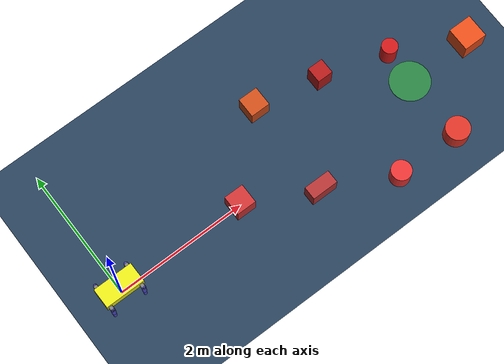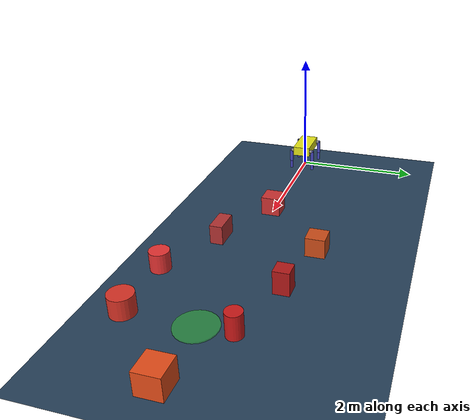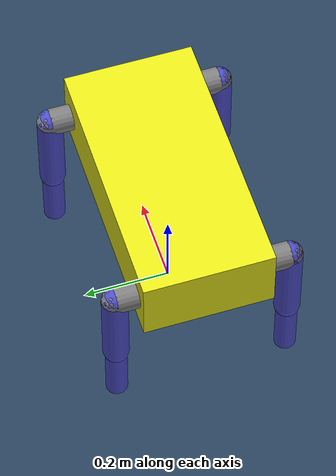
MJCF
<mujoco model="spot_quadruped">
  <compiler angle="radian" meshdir="meshes" autolimits="true"/>

  <option timestep="0.002" iterations="50" solver="Newton" tolerance="1e-10"/>

  <asset>
    <!-- Ground plane texture -->
    <texture name="grid" type="2d" builtin="checker" rgb1=".1 .2 .3"
             rgb2=".2 .3 .4" width="300" height="300" mark="edge" markrgb=".2 .3 .4"/>
    <material name="grid" texture="grid" texrepeat="1 1" texuniform="true" reflectance=".2"/>

    <!-- Goal marker texture -->
    <texture name="goal_tex" type="2d" builtin="flat" rgb1="0.2 0.8 0.2"
             rgb2="0.2 0.8 0.2" width="100" height="100"/>
    <material name="goal_mat" texture="goal_tex"/>

    <!-- Obstacle texture -->
    <texture name="obstacle_tex" type="2d" builtin="flat" rgb1="0.8 0.2 0.2"
             rgb2="0.8 0.2 0.2" width="100" height="100"/>
    <material name="obstacle_mat" texture="obstacle_tex" rgba="0.8 0.2 0.2 1"/>
  </asset>

  <default>
    <geom contype="1" conaffinity="1" friction="1.0 0.005 0.0001"
          solimp="0.9 0.95 0.001" solref="0.002 1"/>
    <joint damping="0.5" armature="0.01"/>
    <motor ctrllimited="true" ctrlrange="-1 1"/>
  </default>

  <worldbody>
    <!-- Ground plane -->
    <light diffuse=".5 .5 .5" pos="0 0 3" dir="0 0 -1"/>
    <geom name="floor" pos="0 0 0" size="40 40 .25" type="plane" material="grid" condim="3"/>

    <!-- Goal marker (visual only) -->
    <body name="goal_marker" pos="5 0 0.01">
      <geom name="goal" type="cylinder" size="0.3 0.01" rgba="0.2 0.8 0.2 0.5"
            contype="0" conaffinity="0" material="goal_mat"/>
    </body>

    <!-- Obstacles (positions randomized by environment at reset) -->
    <body name="obstacle_0" pos="2 0 0.15">
      <geom name="obs_geom_0" type="box" size="0.15 0.15 0.15" material="obstacle_mat"
            rgba="0.8 0.2 0.2 1" mass="50" contype="1" conaffinity="1"/>
    </body>
    <body name="obstacle_1" pos="3 1 0.15">
      <geom name="obs_geom_1" type="box" size="0.15 0.15 0.15" material="obstacle_mat"
            rgba="0.8 0.3 0.1 1" mass="50" contype="1" conaffinity="1"/>
    </body>
    <body name="obstacle_2" pos="4 -1 0.15">
      <geom name="obs_geom_2" type="cylinder" size="0.15 0.15" material="obstacle_mat"
            rgba="0.9 0.2 0.2 1" mass="50" contype="1" conaffinity="1"/>
    </body>
    <body name="obstacle_3" pos="3 -0.5 0.15">
      <geom name="obs_geom_3" type="box" size="0.2 0.1 0.15" material="obstacle_mat"
            rgba="0.7 0.2 0.2 1" mass="50" contype="1" conaffinity="1"/>
    </body>
    <body name="obstacle_4" pos="5 0.5 0.15">
      <geom name="obs_geom_4" type="cylinder" size="0.12 0.2" material="obstacle_mat"
            rgba="0.8 0.1 0.1 1" mass="50" contype="1" conaffinity="1"/>
    </body>
    <body name="obstacle_5" pos="6 0 0.15">
      <geom name="obs_geom_5" type="box" size="0.18 0.18 0.18" material="obstacle_mat"
            rgba="0.9 0.3 0.1 1" mass="50" contype="1" conaffinity="1"/>
    </body>
    <body name="obstacle_6" pos="4 0.8 0.15">
      <geom name="obs_geom_6" type="box" size="0.12 0.12 0.2" material="obstacle_mat"
            rgba="0.7 0.1 0.1 1" mass="50" contype="1" conaffinity="1"/>
    </body>
    <body name="obstacle_7" pos="5 -1 0.15">
      <geom name="obs_geom_7" type="cylinder" size="0.18 0.15" material="obstacle_mat"
            rgba="0.85 0.2 0.15 1" mass="50" contype="1" conaffinity="1"/>
    </body>

    <!-- Overview camera (fixed position, tracking handled programmatically in test script) -->
    <camera name="overview_camera" pos="0 -4 6" xyaxes="1 0 0 0 0.5547 0.8321" fovy="60"/>

    <!-- Spot Robot Body -->
    <body name="base_link" pos="0 0 0.35">
      <freejoint name="base_joint"/>

      <!-- Main body -->
      <geom name="body" type="box" size="0.3 0.15 0.08" rgba="0.9 0.9 0.1 1" mass="10"/>

      <!-- Inertial (add realistic inertia) -->
      <inertial pos="0 0 0" mass="10"
                diaginertia="0.1 0.15 0.2"/>

      <!-- Front-facing camera for CNN obstacle detection -->
      <camera name="front_camera" pos="0.32 0 0.0" xyaxes="0 -1 0 0 0 1"
              fovy="60" mode="fixed"/>

      <!-- Front Left Leg -->
      <body name="fl_hip" pos="0.25 0.15 0">
        <joint name="fl_hip_joint" type="hinge" axis="1 0 0" range="-0.8 0.8" damping="0.5"/>
        <geom name="fl_hip_geom" type="capsule" size="0.03" fromto="0 0 0 0 0.05 0"
              rgba="0.5 0.5 0.5 1" mass="0.5"/>

        <body name="fl_thigh" pos="0 0.05 0">
          <joint name="fl_thigh_joint" type="hinge" axis="0 1 0" range="-2.8 0.8" damping="0.5"/>
          <geom name="fl_thigh_geom" type="capsule" size="0.03" fromto="0 0 0 0 0 -0.20"
                rgba="0.3 0.3 0.8 1" mass="1.0"/>

          <body name="fl_calf" pos="0 0 -0.20">
            <joint name="fl_calf_joint" type="hinge" axis="0 1 0" range="-0.5 2.8" damping="0.5"/>
            <geom name="fl_calf_geom" type="capsule" size="0.025" fromto="0 0 0 0 0 -0.20"
                  rgba="0.3 0.3 0.8 1" mass="0.8"/>

            <!-- Foot contact -->
            <geom name="fl_foot" type="sphere" size="0.03" pos="0 0 -0.20"
                  rgba="0.1 0.1 0.1 1" mass="0.2" friction="1.5 0.005 0.0001"/>
          </body>
        </body>
      </body>

      <!-- Front Right Leg -->
      <body name="fr_hip" pos="0.25 -0.15 0">
        <joint name="fr_hip_joint" type="hinge" axis="1 0 0" range="-0.8 0.8" damping="0.5"/>
        <geom name="fr_hip_geom" type="capsule" size="0.03" fromto="0 0 0 0 -0.05 0"
              rgba="0.5 0.5 0.5 1" mass="0.5"/>

        <body name="fr_thigh" pos="0 -0.05 0">
          <joint name="fr_thigh_joint" type="hinge" axis="0 1 0" range="-2.8 0.8" damping="0.5"/>
          <geom name="fr_thigh_geom" type="capsule" size="0.03" fromto="0 0 0 0 0 -0.20"
                rgba="0.3 0.3 0.8 1" mass="1.0"/>

          <body name="fr_calf" pos="0 0 -0.20">
            <joint name="fr_calf_joint" type="hinge" axis="0 1 0" range="-0.5 2.8" damping="0.5"/>
            <geom name="fr_calf_geom" type="capsule" size="0.025" fromto="0 0 0 0 0 -0.20"
                  rgba="0.3 0.3 0.8 1" mass="0.8"/>

            <geom name="fr_foot" type="sphere" size="0.03" pos="0 0 -0.20"
                  rgba="0.1 0.1 0.1 1" mass="0.2" friction="1.5 0.005 0.0001"/>
          </body>
        </body>
      </body>

      <!-- Rear Left Leg -->
      <body name="rl_hip" pos="-0.25 0.15 0">
        <joint name="rl_hip_joint" type="hinge" axis="1 0 0" range="-0.8 0.8" damping="0.5"/>
        <geom name="rl_hip_geom" type="capsule" size="0.03" fromto="0 0 0 0 0.05 0"
              rgba="0.5 0.5 0.5 1" mass="0.5"/>

        <body name="rl_thigh" pos="0 0.05 0">
          <joint name="rl_thigh_joint" type="hinge" axis="0 1 0" range="-2.8 0.8" damping="0.5"/>
          <geom name="rl_thigh_geom" type="capsule" size="0.03" fromto="0 0 0 0 0 -0.20"
                rgba="0.3 0.3 0.8 1" mass="1.0"/>

          <body name="rl_calf" pos="0 0 -0.20">
            <joint name="rl_calf_joint" type="hinge" axis="0 1 0" range="-0.5 2.8" damping="0.5"/>
            <geom name="rl_calf_geom" type="capsule" size="0.025" fromto="0 0 0 0 0 -0.20"
                  rgba="0.3 0.3 0.8 1" mass="0.8"/>

            <geom name="rl_foot" type="sphere" size="0.03" pos="0 0 -0.20"
                  rgba="0.1 0.1 0.1 1" mass="0.2" friction="1.5 0.005 0.0001"/>
          </body>
        </body>
      </body>

      <!-- Rear Right Leg -->
      <body name="rr_hip" pos="-0.25 -0.15 0">
        <joint name="rr_hip_joint" type="hinge" axis="1 0 0" range="-0.8 0.8" damping="0.5"/>
        <geom name="rr_hip_geom" type="capsule" size="0.03" fromto="0 0 0 0 -0.05 0"
              rgba="0.5 0.5 0.5 1" mass="0.5"/>

        <body name="rr_thigh" pos="0 -0.05 0">
          <joint name="rr_thigh_joint" type="hinge" axis="0 1 0" range="-2.8 0.8" damping="0.5"/>
          <geom name="rr_thigh_geom" type="capsule" size="0.03" fromto="0 0 0 0 0 -0.20"
                rgba="0.3 0.3 0.8 1" mass="1.0"/>

          <body name="rr_calf" pos="0 0 -0.20">
            <joint name="rr_calf_joint" type="hinge" axis="0 1 0" range="-0.5 2.8" damping="0.5"/>
            <geom name="rr_calf_geom" type="capsule" size="0.025" fromto="0 0 0 0 0 -0.20"
                  rgba="0.3 0.3 0.8 1" mass="0.8"/>

            <geom name="rr_foot" type="sphere" size="0.03" pos="0 0 -0.20"
                  rgba="0.1 0.1 0.1 1" mass="0.2" friction="1.5 0.005 0.0001"/>
          </body>
        </body>
      </body>

    </body>
  </worldbody>

  <!-- Actuators: Position control for each joint -->
  <actuator>
    <!-- Front Left -->
    <position name="fl_hip_act" joint="fl_hip_joint" kp="100" kv="10"/>
    <position name="fl_thigh_act" joint="fl_thigh_joint" kp="100" kv="10"/>
    <position name="fl_calf_act" joint="fl_calf_joint" kp="100" kv="10"/>

    <!-- Front Right -->
    <position name="fr_hip_act" joint="fr_hip_joint" kp="100" kv="10"/>
    <position name="fr_thigh_act" joint="fr_thigh_joint" kp="100" kv="10"/>
    <position name="fr_calf_act" joint="fr_calf_joint" kp="100" kv="10"/>

    <!-- Rear Left -->
    <position name="rl_hip_act" joint="rl_hip_joint" kp="100" kv="10"/>
    <position name="rl_thigh_act" joint="rl_thigh_joint" kp="100" kv="10"/>
    <position name="rl_calf_act" joint="rl_calf_joint" kp="100" kv="10"/>

    <!-- Rear Right -->
    <position name="rr_hip_act" joint="rr_hip_joint" kp="100" kv="10"/>
    <position name="rr_thigh_act" joint="rr_thigh_joint" kp="100" kv="10"/>
    <position name="rr_calf_act" joint="rr_calf_joint" kp="100" kv="10"/>
  </actuator>

</mujoco>
